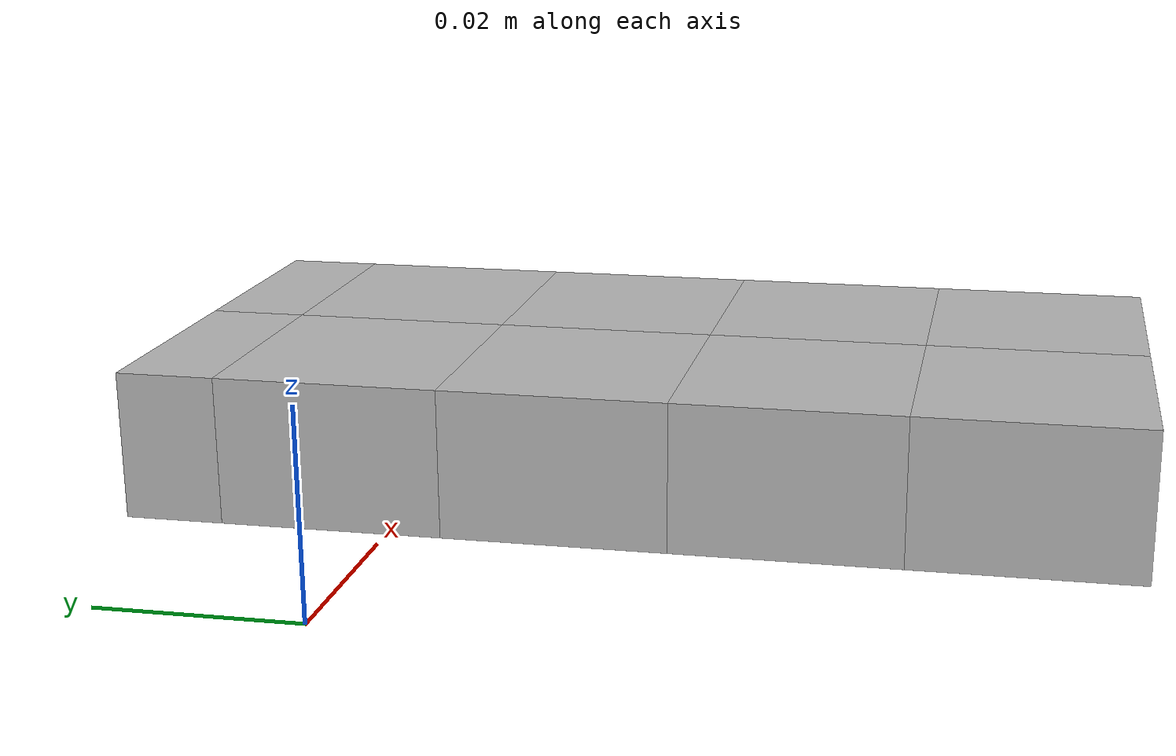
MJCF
<mujoco model="dummy_tablet">
  <compiler angle="radian"/>

  <asset>
    <mesh name="base_link" content_type="model/stl" file="base_link.stl" scale="0.001 0.001 0.001"/>
    <mesh name="2-1_1" content_type="model/stl" file="2-1_1.stl" scale="0.001 0.001 0.001"/>
    <mesh name="1-2_1" content_type="model/stl" file="1-2_1.stl" scale="0.001 0.001 0.001"/>
    <mesh name="2-2_1" content_type="model/stl" file="2-2_1.stl" scale="0.001 0.001 0.001"/>
    <mesh name="3-2_1" content_type="model/stl" file="3-2_1.stl" scale="0.001 0.001 0.001"/>
    <mesh name="4-2_1" content_type="model/stl" file="4-2_1.stl" scale="0.001 0.001 0.001"/>
    <mesh name="5-2_1" content_type="model/stl" file="5-2_1.stl" scale="0.001 0.001 0.001"/>
    <mesh name="3-1_1" content_type="model/stl" file="3-1_1.stl" scale="0.001 0.001 0.001"/>
    <mesh name="4-1_1" content_type="model/stl" file="4-1_1.stl" scale="0.001 0.001 0.001"/>
    <mesh name="5-1_1" content_type="model/stl" file="5-1_1.stl" scale="0.001 0.001 0.001"/>
  </asset>

  <worldbody>
    <body>
      <joint type="free"/>
      <inertial pos="0 0 0" mass = "0.0294375" diaginertia = "0.00006125 0.0000921875 0.0000921875"/>
      <geom type="mesh" mass="0.0294375" rgba="0.7 0.7 0.7 1" mesh="base_link"/>
      <geom type="mesh" rgba="0.7 0.7 0.7 1" mesh="2-1_1"/>
      <geom type="mesh" rgba="0.7 0.7 0.7 1" mesh="3-1_1"/>
      <geom type="mesh" rgba="0.7 0.7 0.7 1" mesh="4-1_1"/>
      <geom type="mesh" rgba="0.7 0.7 0.7 1" mesh="5-1_1"/>
      <geom type="mesh" rgba="0.7 0.7 0.7 1" mesh="1-2_1"/>
      <geom type="mesh" rgba="0.7 0.7 0.7 1" mesh="2-2_1"/>
      <geom type="mesh" rgba="0.7 0.7 0.7 1" mesh="3-2_1"/>
      <geom type="mesh" rgba="0.7 0.7 0.7 1" mesh="4-2_1"/>
      <geom type="mesh" rgba="0.7 0.7 0.7 1" mesh="5-2_1"/>
    </body>
  </worldbody>
</mujoco>
